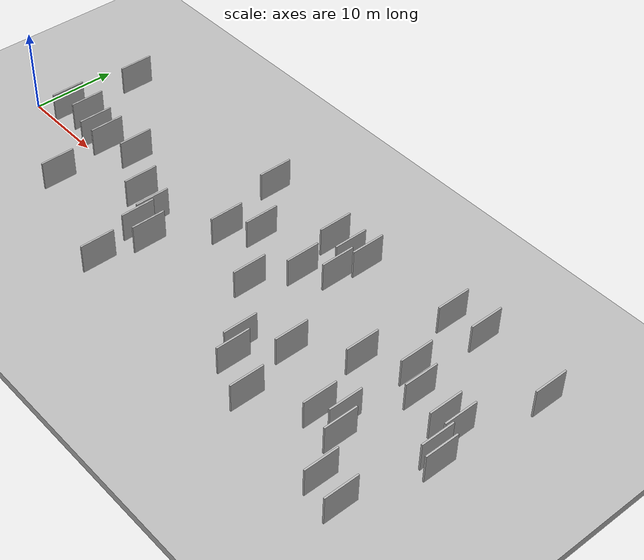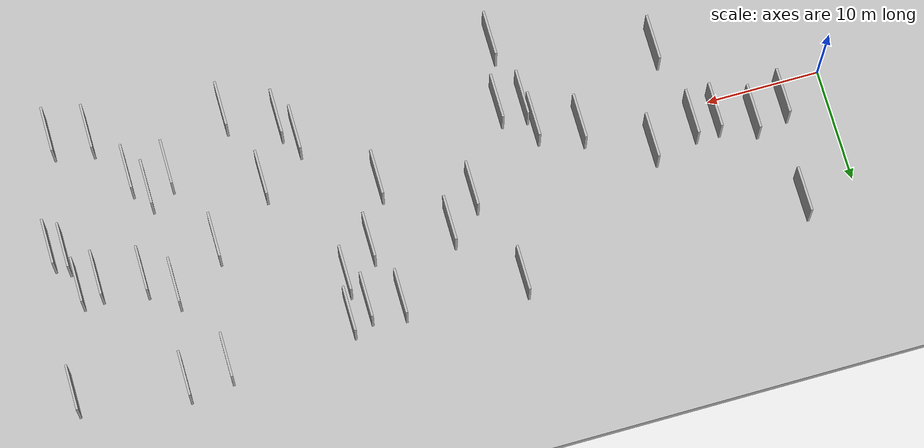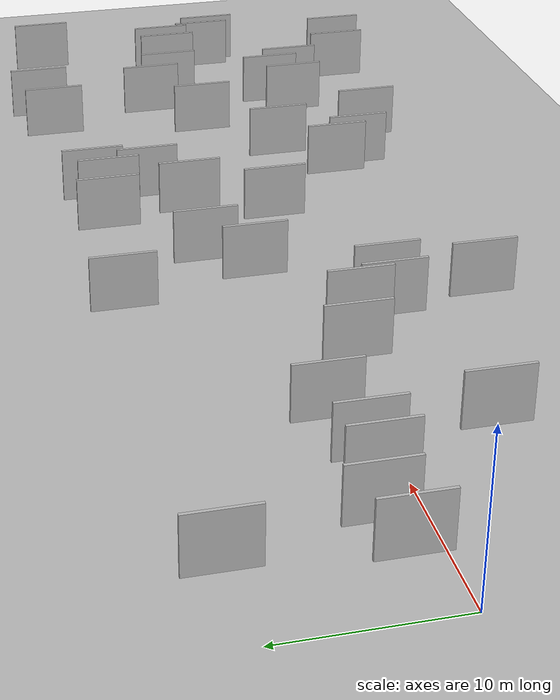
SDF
<?xml version="1.0" encoding="utf-8"?>

<sdf version="1.6">

   <world name="default">

      <gui fullscreen="0">

         <camera name="user_camera">

            <pose>-15 0 4.57585 0 0 0</pose>

            <view_controller>orbit</view_controller>

         </camera>

      </gui>

      <scene>

         <sky>

           <clouds>

             <speed>12</speed>

           </clouds>

         </sky>

         <ambient>0.4 0.4 0.4 1</ambient>

         <background>0.7 0.7 0.7 1</background>

         <shadows>1</shadows>

      </scene>

      <gravity>0 0 -9.8066</gravity>

      <magnetic_field>6e-06 2.3e-05 -4.2e-05</magnetic_field>

      <physics default="0" name="default_physics" type="ode">

         <ode>

            <solver>

               <type>quick</type>

               <iters>10</iters>

               <sor>1.0</sor>

               <use_dynamic_moi_rescaling>0</use_dynamic_moi_rescaling>

            </solver>

            <constraints>

               <cfm>0</cfm>

               <erp>0.2</erp>

               <contact_max_correcting_vel>100</contact_max_correcting_vel>

               <contact_surface_layer>0.001</contact_surface_layer>

            </constraints>

         </ode>

         <max_step_size>0.004</max_step_size>

         <real_time_factor>1</real_time_factor>

         <real_time_update_rate>250</real_time_update_rate>

      </physics>

      <light name="sun" type="directional">

         <cast_shadows>1</cast_shadows>

         <pose>0 0 10 0 0 0</pose>

         <diffuse>0.8 0.8 0.8 1</diffuse>

         <specular>0.2 0.2 0.2 1</specular>

         <attenuation>

            <range>1000</range>

            <constant>0.9</constant>

            <linear>0.01</linear>

            <quadratic>0.001</quadratic>

         </attenuation>

         <direction>-0.5 0.1 -0.9</direction>

      </light>

      <include>

         <name>ground_plane_1</name>

         <uri>model://HANNAS_ground_plane</uri>

         <pose>0 0 0  0 0 0</pose>

      </include>

      <include>

         <name>ground_plane_2</name>

         <uri>model://HANNAS_ground_plane</uri>

         <pose>100 0 0  0 0 0</pose>

      </include>

      <model name="HANNAS_wall_1">

         <static>1</static>

         <pose frame="">40.3661 10.0289 0.0 0.000000 0.000000 1.570796</pose>

         <link name="link">

            <pose frame="">0 0 2.00 0 0 0</pose>

            <collision name="collision">

               <geometry>

                  <box>

                     <size>4.00 0.2 4.00</size>

                  </box>

               </geometry>

               <max_contacts>10</max_contacts>

               <surface>

                  <contact>

                     <ode/>

                  </contact>

                  <bounce/>

                  <friction>

                     <torsional>

                        <ode/>

                     </torsional>

                     <ode/>

                  </friction>

               </surface>

            </collision>

            <visual name="visual">

               <cast_shadows>0</cast_shadows>

               <geometry>

                  <box>

                     <size>4.00 0.2 4.00</size>

                  </box>

               </geometry>

               <material>

                  <script>

                     <uri>model://HANNAS_wall/materials/scripts</uri>

                     <uri>model://HANNAS_wall/materials/textures</uri>

                     <name>vrc/HANNAS_wall</name>

                  </script>

               </material>

            </visual>

            <self_collide>0</self_collide>

            <enable_wind>0</enable_wind>

            <kinematic>0</kinematic>

         </link>

      </model>

      <model name="HANNAS_wall_2">

         <static>1</static>

         <pose frame="">25.6005 -4.1353 0.0 0.000000 0.000000 1.570796</pose>

         <link name="link">

            <pose frame="">0 0 2.00 0 0 0</pose>

            <collision name="collision">

               <geometry>

                  <box>

                     <size>4.00 0.2 4.00</size>

                  </box>

               </geometry>

               <max_contacts>10</max_contacts>

               <surface>

                  <contact>

                     <ode/>

                  </contact>

                  <bounce/>

                  <friction>

                     <torsional>

                        <ode/>

                     </torsional>

                     <ode/>

                  </friction>

               </surface>

            </collision>

            <visual name="visual">

               <cast_shadows>0</cast_shadows>

               <geometry>

                  <box>

                     <size>4.00 0.2 4.00</size>

                  </box>

               </geometry>

               <material>

                  <script>

                     <uri>model://HANNAS_wall/materials/scripts</uri>

                     <uri>model://HANNAS_wall/materials/textures</uri>

                     <name>vrc/HANNAS_wall</name>

                  </script>

               </material>

            </visual>

            <self_collide>0</self_collide>

            <enable_wind>0</enable_wind>

            <kinematic>0</kinematic>

         </link>

      </model>

      <model name="HANNAS_wall_3">

         <static>1</static>

         <pose frame="">41.6318 4.5164 0.0 0.000000 0.000000 1.570796</pose>

         <link name="link">

            <pose frame="">0 0 2.00 0 0 0</pose>

            <collision name="collision">

               <geometry>

                  <box>

                     <size>4.00 0.2 4.00</size>

                  </box>

               </geometry>

               <max_contacts>10</max_contacts>

               <surface>

                  <contact>

                     <ode/>

                  </contact>

                  <bounce/>

                  <friction>

                     <torsional>

                        <ode/>

                     </torsional>

                     <ode/>

                  </friction>

               </surface>

            </collision>

            <visual name="visual">

               <cast_shadows>0</cast_shadows>

               <geometry>

                  <box>

                     <size>4.00 0.2 4.00</size>

                  </box>

               </geometry>

               <material>

                  <script>

                     <uri>model://HANNAS_wall/materials/scripts</uri>

                     <uri>model://HANNAS_wall/materials/textures</uri>

                     <name>vrc/HANNAS_wall</name>

                  </script>

               </material>

            </visual>

            <self_collide>0</self_collide>

            <enable_wind>0</enable_wind>

            <kinematic>0</kinematic>

         </link>

      </model>

      <model name="HANNAS_wall_4">

         <static>1</static>

         <pose frame="">44.9472 10.3143 0.0 0.000000 0.000000 1.570796</pose>

         <link name="link">

            <pose frame="">0 0 2.00 0 0 0</pose>

            <collision name="collision">

               <geometry>

                  <box>

                     <size>4.00 0.2 4.00</size>

                  </box>

               </geometry>

               <max_contacts>10</max_contacts>

               <surface>

                  <contact>

                     <ode/>

                  </contact>

                  <bounce/>

                  <friction>

                     <torsional>

                        <ode/>

                     </torsional>

                     <ode/>

                  </friction>

               </surface>

            </collision>

            <visual name="visual">

               <cast_shadows>0</cast_shadows>

               <geometry>

                  <box>

                     <size>4.00 0.2 4.00</size>

                  </box>

               </geometry>

               <material>

                  <script>

                     <uri>model://HANNAS_wall/materials/scripts</uri>

                     <uri>model://HANNAS_wall/materials/textures</uri>

                     <name>vrc/HANNAS_wall</name>

                  </script>

               </material>

            </visual>

            <self_collide>0</self_collide>

            <enable_wind>0</enable_wind>

            <kinematic>0</kinematic>

         </link>

      </model>

      <model name="HANNAS_wall_5">

         <static>1</static>

         <pose frame="">25.2025 -1.9950 0.0 0.000000 0.000000 1.570796</pose>

         <link name="link">

            <pose frame="">0 0 2.00 0 0 0</pose>

            <collision name="collision">

               <geometry>

                  <box>

                     <size>4.00 0.2 4.00</size>

                  </box>

               </geometry>

               <max_contacts>10</max_contacts>

               <surface>

                  <contact>

                     <ode/>

                  </contact>

                  <bounce/>

                  <friction>

                     <torsional>

                        <ode/>

                     </torsional>

                     <ode/>

                  </friction>

               </surface>

            </collision>

            <visual name="visual">

               <cast_shadows>0</cast_shadows>

               <geometry>

                  <box>

                     <size>4.00 0.2 4.00</size>

                  </box>

               </geometry>

               <material>

                  <script>

                     <uri>model://HANNAS_wall/materials/scripts</uri>

                     <uri>model://HANNAS_wall/materials/textures</uri>

                     <name>vrc/HANNAS_wall</name>

                  </script>

               </material>

            </visual>

            <self_collide>0</self_collide>

            <enable_wind>0</enable_wind>

            <kinematic>0</kinematic>

         </link>

      </model>

      <model name="HANNAS_wall_6">

         <static>1</static>

         <pose frame="">29.8149 10.8938 0.0 0.000000 0.000000 1.570796</pose>

         <link name="link">

            <pose frame="">0 0 2.00 0 0 0</pose>

            <collision name="collision">

               <geometry>

                  <box>

                     <size>4.00 0.2 4.00</size>

                  </box>

               </geometry>

               <max_contacts>10</max_contacts>

               <surface>

                  <contact>

                     <ode/>

                  </contact>

                  <bounce/>

                  <friction>

                     <torsional>

                        <ode/>

                     </torsional>

                     <ode/>

                  </friction>

               </surface>

            </collision>

            <visual name="visual">

               <cast_shadows>0</cast_shadows>

               <geometry>

                  <box>

                     <size>4.00 0.2 4.00</size>

                  </box>

               </geometry>

               <material>

                  <script>

                     <uri>model://HANNAS_wall/materials/scripts</uri>

                     <uri>model://HANNAS_wall/materials/textures</uri>

                     <name>vrc/HANNAS_wall</name>

                  </script>

               </material>

            </visual>

            <self_collide>0</self_collide>

            <enable_wind>0</enable_wind>

            <kinematic>0</kinematic>

         </link>

      </model>

      <model name="HANNAS_wall_7">

         <static>1</static>

         <pose frame="">15.9463 2.5968 0.0 0.000000 0.000000 1.570796</pose>

         <link name="link">

            <pose frame="">0 0 2.00 0 0 0</pose>

            <collision name="collision">

               <geometry>

                  <box>

                     <size>4.00 0.2 4.00</size>

                  </box>

               </geometry>

               <max_contacts>10</max_contacts>

               <surface>

                  <contact>

                     <ode/>

                  </contact>

                  <bounce/>

                  <friction>

                     <torsional>

                        <ode/>

                     </torsional>

                     <ode/>

                  </friction>

               </surface>

            </collision>

            <visual name="visual">

               <cast_shadows>0</cast_shadows>

               <geometry>

                  <box>

                     <size>4.00 0.2 4.00</size>

                  </box>

               </geometry>

               <material>

                  <script>

                     <uri>model://HANNAS_wall/materials/scripts</uri>

                     <uri>model://HANNAS_wall/materials/textures</uri>

                     <name>vrc/HANNAS_wall</name>

                  </script>

               </material>

            </visual>

            <self_collide>0</self_collide>

            <enable_wind>0</enable_wind>

            <kinematic>0</kinematic>

         </link>

      </model>

      <model name="HANNAS_wall_8">

         <static>1</static>

         <pose frame="">13.3557 -5.8385 0.0 0.000000 0.000000 1.570796</pose>

         <link name="link">

            <pose frame="">0 0 2.00 0 0 0</pose>

            <collision name="collision">

               <geometry>

                  <box>

                     <size>4.00 0.2 4.00</size>

                  </box>

               </geometry>

               <max_contacts>10</max_contacts>

               <surface>

                  <contact>

                     <ode/>

                  </contact>

                  <bounce/>

                  <friction>

                     <torsional>

                        <ode/>

                     </torsional>

                     <ode/>

                  </friction>

               </surface>

            </collision>

            <visual name="visual">

               <cast_shadows>0</cast_shadows>

               <geometry>

                  <box>

                     <size>4.00 0.2 4.00</size>

                  </box>

               </geometry>

               <material>

                  <script>

                     <uri>model://HANNAS_wall/materials/scripts</uri>

                     <uri>model://HANNAS_wall/materials/textures</uri>

                     <name>vrc/HANNAS_wall</name>

                  </script>

               </material>

            </visual>

            <self_collide>0</self_collide>

            <enable_wind>0</enable_wind>

            <kinematic>0</kinematic>

         </link>

      </model>

      <model name="HANNAS_wall_9">

         <static>1</static>

         <pose frame="">56.5727 -6.3899 0.0 0.000000 0.000000 1.570796</pose>

         <link name="link">

            <pose frame="">0 0 2.00 0 0 0</pose>

            <collision name="collision">

               <geometry>

                  <box>

                     <size>4.00 0.2 4.00</size>

                  </box>

               </geometry>

               <max_contacts>10</max_contacts>

               <surface>

                  <contact>

                     <ode/>

                  </contact>

                  <bounce/>

                  <friction>

                     <torsional>

                        <ode/>

                     </torsional>

                     <ode/>

                  </friction>

               </surface>

            </collision>

            <visual name="visual">

               <cast_shadows>0</cast_shadows>

               <geometry>

                  <box>

                     <size>4.00 0.2 4.00</size>

                  </box>

               </geometry>

               <material>

                  <script>

                     <uri>model://HANNAS_wall/materials/scripts</uri>

                     <uri>model://HANNAS_wall/materials/textures</uri>

                     <name>vrc/HANNAS_wall</name>

                  </script>

               </material>

            </visual>

            <self_collide>0</self_collide>

            <enable_wind>0</enable_wind>

            <kinematic>0</kinematic>

         </link>

      </model>

      <model name="HANNAS_wall_10">

         <static>1</static>

         <pose frame="">27.7865 -4.3816 0.0 0.000000 0.000000 1.570796</pose>

         <link name="link">

            <pose frame="">0 0 2.00 0 0 0</pose>

            <collision name="collision">

               <geometry>

                  <box>

                     <size>4.00 0.2 4.00</size>

                  </box>

               </geometry>

               <max_contacts>10</max_contacts>

               <surface>

                  <contact>

                     <ode/>

                  </contact>

                  <bounce/>

                  <friction>

                     <torsional>

                        <ode/>

                     </torsional>

                     <ode/>

                  </friction>

               </surface>

            </collision>

            <visual name="visual">

               <cast_shadows>0</cast_shadows>

               <geometry>

                  <box>

                     <size>4.00 0.2 4.00</size>

                  </box>

               </geometry>

               <material>

                  <script>

                     <uri>model://HANNAS_wall/materials/scripts</uri>

                     <uri>model://HANNAS_wall/materials/textures</uri>

                     <name>vrc/HANNAS_wall</name>

                  </script>

               </material>

            </visual>

            <self_collide>0</self_collide>

            <enable_wind>0</enable_wind>

            <kinematic>0</kinematic>

         </link>

      </model>

      <model name="HANNAS_wall_11">

         <static>1</static>

         <pose frame="">62.3425 -11.3296 0.0 0.000000 0.000000 1.570796</pose>

         <link name="link">

            <pose frame="">0 0 2.00 0 0 0</pose>

            <collision name="collision">

               <geometry>

                  <box>

                     <size>4.00 0.2 4.00</size>

                  </box>

               </geometry>

               <max_contacts>10</max_contacts>

               <surface>

                  <contact>

                     <ode/>

                  </contact>

                  <bounce/>

                  <friction>

                     <torsional>

                        <ode/>

                     </torsional>

                     <ode/>

                  </friction>

               </surface>

            </collision>

            <visual name="visual">

               <cast_shadows>0</cast_shadows>

               <geometry>

                  <box>

                     <size>4.00 0.2 4.00</size>

                  </box>

               </geometry>

               <material>

                  <script>

                     <uri>model://HANNAS_wall/materials/scripts</uri>

                     <uri>model://HANNAS_wall/materials/textures</uri>

                     <name>vrc/HANNAS_wall</name>

                  </script>

               </material>

            </visual>

            <self_collide>0</self_collide>

            <enable_wind>0</enable_wind>

            <kinematic>0</kinematic>

         </link>

      </model>

      <model name="HANNAS_wall_12">

         <static>1</static>

         <pose frame="">45.2224 -6.4239 0.0 0.000000 0.000000 1.570796</pose>

         <link name="link">

            <pose frame="">0 0 2.00 0 0 0</pose>

            <collision name="collision">

               <geometry>

                  <box>

                     <size>4.00 0.2 4.00</size>

                  </box>

               </geometry>

               <max_contacts>10</max_contacts>

               <surface>

                  <contact>

                     <ode/>

                  </contact>

                  <bounce/>

                  <friction>

                     <torsional>

                        <ode/>

                     </torsional>

                     <ode/>

                  </friction>

               </surface>

            </collision>

            <visual name="visual">

               <cast_shadows>0</cast_shadows>

               <geometry>

                  <box>

                     <size>4.00 0.2 4.00</size>

                  </box>

               </geometry>

               <material>

                  <script>

                     <uri>model://HANNAS_wall/materials/scripts</uri>

                     <uri>model://HANNAS_wall/materials/textures</uri>

                     <name>vrc/HANNAS_wall</name>

                  </script>

               </material>

            </visual>

            <self_collide>0</self_collide>

            <enable_wind>0</enable_wind>

            <kinematic>0</kinematic>

         </link>

      </model>

      <model name="HANNAS_wall_13">

         <static>1</static>

         <pose frame="">50.7687 -10.1787 0.0 0.000000 0.000000 1.570796</pose>

         <link name="link">

            <pose frame="">0 0 2.00 0 0 0</pose>

            <collision name="collision">

               <geometry>

                  <box>

                     <size>4.00 0.2 4.00</size>

                  </box>

               </geometry>

               <max_contacts>10</max_contacts>

               <surface>

                  <contact>

                     <ode/>

                  </contact>

                  <bounce/>

                  <friction>

                     <torsional>

                        <ode/>

                     </torsional>

                     <ode/>

                  </friction>

               </surface>

            </collision>

            <visual name="visual">

               <cast_shadows>0</cast_shadows>

               <geometry>

                  <box>

                     <size>4.00 0.2 4.00</size>

                  </box>

               </geometry>

               <material>

                  <script>

                     <uri>model://HANNAS_wall/materials/scripts</uri>

                     <uri>model://HANNAS_wall/materials/textures</uri>

                     <name>vrc/HANNAS_wall</name>

                  </script>

               </material>

            </visual>

            <self_collide>0</self_collide>

            <enable_wind>0</enable_wind>

            <kinematic>0</kinematic>

         </link>

      </model>

      <model name="HANNAS_wall_14">

         <static>1</static>

         <pose frame="">68.0120 -2.3012 0.0 0.000000 0.000000 1.570796</pose>

         <link name="link">

            <pose frame="">0 0 2.00 0 0 0</pose>

            <collision name="collision">

               <geometry>

                  <box>

                     <size>4.00 0.2 4.00</size>

                  </box>

               </geometry>

               <max_contacts>10</max_contacts>

               <surface>

                  <contact>

                     <ode/>

                  </contact>

                  <bounce/>

                  <friction>

                     <torsional>

                        <ode/>

                     </torsional>

                     <ode/>

                  </friction>

               </surface>

            </collision>

            <visual name="visual">

               <cast_shadows>0</cast_shadows>

               <geometry>

                  <box>

                     <size>4.00 0.2 4.00</size>

                  </box>

               </geometry>

               <material>

                  <script>

                     <uri>model://HANNAS_wall/materials/scripts</uri>

                     <uri>model://HANNAS_wall/materials/textures</uri>

                     <name>vrc/HANNAS_wall</name>

                  </script>

               </material>

            </visual>

            <self_collide>0</self_collide>

            <enable_wind>0</enable_wind>

            <kinematic>0</kinematic>

         </link>

      </model>

      <model name="HANNAS_wall_15">

         <static>1</static>

         <pose frame="">58.6559 -5.1397 0.0 0.000000 0.000000 1.570796</pose>

         <link name="link">

            <pose frame="">0 0 2.00 0 0 0</pose>

            <collision name="collision">

               <geometry>

                  <box>

                     <size>4.00 0.2 4.00</size>

                  </box>

               </geometry>

               <max_contacts>10</max_contacts>

               <surface>

                  <contact>

                     <ode/>

                  </contact>

                  <bounce/>

                  <friction>

                     <torsional>

                        <ode/>

                     </torsional>

                     <ode/>

                  </friction>

               </surface>

            </collision>

            <visual name="visual">

               <cast_shadows>0</cast_shadows>

               <geometry>

                  <box>

                     <size>4.00 0.2 4.00</size>

                  </box>

               </geometry>

               <material>

                  <script>

                     <uri>model://HANNAS_wall/materials/scripts</uri>

                     <uri>model://HANNAS_wall/materials/textures</uri>

                     <name>vrc/HANNAS_wall</name>

                  </script>

               </material>

            </visual>

            <self_collide>0</self_collide>

            <enable_wind>0</enable_wind>

            <kinematic>0</kinematic>

         </link>

      </model>

      <model name="HANNAS_wall_16">

         <static>1</static>

         <pose frame="">4.0050 1.8254 0.0 0.000000 0.000000 1.570796</pose>

         <link name="link">

            <pose frame="">0 0 2.00 0 0 0</pose>

            <collision name="collision">

               <geometry>

                  <box>

                     <size>4.00 0.2 4.00</size>

                  </box>

               </geometry>

               <max_contacts>10</max_contacts>

               <surface>

                  <contact>

                     <ode/>

                  </contact>

                  <bounce/>

                  <friction>

                     <torsional>

                        <ode/>

                     </torsional>

                     <ode/>

                  </friction>

               </surface>

            </collision>

            <visual name="visual">

               <cast_shadows>0</cast_shadows>

               <geometry>

                  <box>

                     <size>4.00 0.2 4.00</size>

                  </box>

               </geometry>

               <material>

                  <script>

                     <uri>model://HANNAS_wall/materials/scripts</uri>

                     <uri>model://HANNAS_wall/materials/textures</uri>

                     <name>vrc/HANNAS_wall</name>

                  </script>

               </material>

            </visual>

            <self_collide>0</self_collide>

            <enable_wind>0</enable_wind>

            <kinematic>0</kinematic>

         </link>

      </model>

      <model name="HANNAS_wall_17">

         <static>1</static>

         <pose frame="">6.8567 2.5074 0.0 0.000000 0.000000 1.570796</pose>

         <link name="link">

            <pose frame="">0 0 2.00 0 0 0</pose>

            <collision name="collision">

               <geometry>

                  <box>

                     <size>4.00 0.2 4.00</size>

                  </box>

               </geometry>

               <max_contacts>10</max_contacts>

               <surface>

                  <contact>

                     <ode/>

                  </contact>

                  <bounce/>

                  <friction>

                     <torsional>

                        <ode/>

                     </torsional>

                     <ode/>

                  </friction>

               </surface>

            </collision>

            <visual name="visual">

               <cast_shadows>0</cast_shadows>

               <geometry>

                  <box>

                     <size>4.00 0.2 4.00</size>

                  </box>

               </geometry>

               <material>

                  <script>

                     <uri>model://HANNAS_wall/materials/scripts</uri>

                     <uri>model://HANNAS_wall/materials/textures</uri>

                     <name>vrc/HANNAS_wall</name>

                  </script>

               </material>

            </visual>

            <self_collide>0</self_collide>

            <enable_wind>0</enable_wind>

            <kinematic>0</kinematic>

         </link>

      </model>

      <model name="HANNAS_wall_18">

         <static>1</static>

         <pose frame="">44.3510 6.7857 0.0 0.000000 0.000000 1.570796</pose>

         <link name="link">

            <pose frame="">0 0 2.00 0 0 0</pose>

            <collision name="collision">

               <geometry>

                  <box>

                     <size>4.00 0.2 4.00</size>

                  </box>

               </geometry>

               <max_contacts>10</max_contacts>

               <surface>

                  <contact>

                     <ode/>

                  </contact>

                  <bounce/>

                  <friction>

                     <torsional>

                        <ode/>

                     </torsional>

                     <ode/>

                  </friction>

               </surface>

            </collision>

            <visual name="visual">

               <cast_shadows>0</cast_shadows>

               <geometry>

                  <box>

                     <size>4.00 0.2 4.00</size>

                  </box>

               </geometry>

               <material>

                  <script>

                     <uri>model://HANNAS_wall/materials/scripts</uri>

                     <uri>model://HANNAS_wall/materials/textures</uri>

                     <name>vrc/HANNAS_wall</name>

                  </script>

               </material>

            </visual>

            <self_collide>0</self_collide>

            <enable_wind>0</enable_wind>

            <kinematic>0</kinematic>

         </link>

      </model>

      <model name="HANNAS_wall_19">

         <static>1</static>

         <pose frame="">39.5166 -0.6238 0.0 0.000000 0.000000 1.570796</pose>

         <link name="link">

            <pose frame="">0 0 2.00 0 0 0</pose>

            <collision name="collision">

               <geometry>

                  <box>

                     <size>4.00 0.2 4.00</size>

                  </box>

               </geometry>

               <max_contacts>10</max_contacts>

               <surface>

                  <contact>

                     <ode/>

                  </contact>

                  <bounce/>

                  <friction>

                     <torsional>

                        <ode/>

                     </torsional>

                     <ode/>

                  </friction>

               </surface>

            </collision>

            <visual name="visual">

               <cast_shadows>0</cast_shadows>

               <geometry>

                  <box>

                     <size>4.00 0.2 4.00</size>

                  </box>

               </geometry>

               <material>

                  <script>

                     <uri>model://HANNAS_wall/materials/scripts</uri>

                     <uri>model://HANNAS_wall/materials/textures</uri>

                     <name>vrc/HANNAS_wall</name>

                  </script>

               </material>

            </visual>

            <self_collide>0</self_collide>

            <enable_wind>0</enable_wind>

            <kinematic>0</kinematic>

         </link>

      </model>

      <model name="HANNAS_wall_20">

         <static>1</static>

         <pose frame="">59.9736 -6.9280 0.0 0.000000 0.000000 1.570796</pose>

         <link name="link">

            <pose frame="">0 0 2.00 0 0 0</pose>

            <collision name="collision">

               <geometry>

                  <box>

                     <size>4.00 0.2 4.00</size>

                  </box>

               </geometry>

               <max_contacts>10</max_contacts>

               <surface>

                  <contact>

                     <ode/>

                  </contact>

                  <bounce/>

                  <friction>

                     <torsional>

                        <ode/>

                     </torsional>

                     <ode/>

                  </friction>

               </surface>

            </collision>

            <visual name="visual">

               <cast_shadows>0</cast_shadows>

               <geometry>

                  <box>

                     <size>4.00 0.2 4.00</size>

                  </box>

               </geometry>

               <material>

                  <script>

                     <uri>model://HANNAS_wall/materials/scripts</uri>

                     <uri>model://HANNAS_wall/materials/textures</uri>

                     <name>vrc/HANNAS_wall</name>

                  </script>

               </material>

            </visual>

            <self_collide>0</self_collide>

            <enable_wind>0</enable_wind>

            <kinematic>0</kinematic>

         </link>

      </model>

      <model name="HANNAS_wall_21">

         <static>1</static>

         <pose frame="">12.0577 1.5068 0.0 0.000000 0.000000 1.570796</pose>

         <link name="link">

            <pose frame="">0 0 2.00 0 0 0</pose>

            <collision name="collision">

               <geometry>

                  <box>

                     <size>4.00 0.2 4.00</size>

                  </box>

               </geometry>

               <max_contacts>10</max_contacts>

               <surface>

                  <contact>

                     <ode/>

                  </contact>

                  <bounce/>

                  <friction>

                     <torsional>

                        <ode/>

                     </torsional>

                     <ode/>

                  </friction>

               </surface>

            </collision>

            <visual name="visual">

               <cast_shadows>0</cast_shadows>

               <geometry>

                  <box>

                     <size>4.00 0.2 4.00</size>

                  </box>

               </geometry>

               <material>

                  <script>

                     <uri>model://HANNAS_wall/materials/scripts</uri>

                     <uri>model://HANNAS_wall/materials/textures</uri>

                     <name>vrc/HANNAS_wall</name>

                  </script>

               </material>

            </visual>

            <self_collide>0</self_collide>

            <enable_wind>0</enable_wind>

            <kinematic>0</kinematic>

         </link>

      </model>

      <model name="HANNAS_wall_22">

         <static>1</static>

         <pose frame="">49.0254 -3.2967 0.0 0.000000 0.000000 1.570796</pose>

         <link name="link">

            <pose frame="">0 0 2.00 0 0 0</pose>

            <collision name="collision">

               <geometry>

                  <box>

                     <size>4.00 0.2 4.00</size>

                  </box>

               </geometry>

               <max_contacts>10</max_contacts>

               <surface>

                  <contact>

                     <ode/>

                  </contact>

                  <bounce/>

                  <friction>

                     <torsional>

                        <ode/>

                     </torsional>

                     <ode/>

                  </friction>

               </surface>

            </collision>

            <visual name="visual">

               <cast_shadows>0</cast_shadows>

               <geometry>

                  <box>

                     <size>4.00 0.2 4.00</size>

                  </box>

               </geometry>

               <material>

                  <script>

                     <uri>model://HANNAS_wall/materials/scripts</uri>

                     <uri>model://HANNAS_wall/materials/textures</uri>

                     <name>vrc/HANNAS_wall</name>

                  </script>

               </material>

            </visual>

            <self_collide>0</self_collide>

            <enable_wind>0</enable_wind>

            <kinematic>0</kinematic>

         </link>

      </model>

      <model name="HANNAS_wall_23">

         <static>1</static>

         <pose frame="">58.5530 3.8619 0.0 0.000000 0.000000 1.570796</pose>

         <link name="link">

            <pose frame="">0 0 2.00 0 0 0</pose>

            <collision name="collision">

               <geometry>

                  <box>

                     <size>4.00 0.2 4.00</size>

                  </box>

               </geometry>

               <max_contacts>10</max_contacts>

               <surface>

                  <contact>

                     <ode/>

                  </contact>

                  <bounce/>

                  <friction>

                     <torsional>

                        <ode/>

                     </torsional>

                     <ode/>

                  </friction>

               </surface>

            </collision>

            <visual name="visual">

               <cast_shadows>0</cast_shadows>

               <geometry>

                  <box>

                     <size>4.00 0.2 4.00</size>

                  </box>

               </geometry>

               <material>

                  <script>

                     <uri>model://HANNAS_wall/materials/scripts</uri>

                     <uri>model://HANNAS_wall/materials/textures</uri>

                     <name>vrc/HANNAS_wall</name>

                  </script>

               </material>

            </visual>

            <self_collide>0</self_collide>

            <enable_wind>0</enable_wind>

            <kinematic>0</kinematic>

         </link>

      </model>

      <model name="HANNAS_wall_24">

         <static>1</static>

         <pose frame="">26.8066 -10.0412 0.0 0.000000 0.000000 1.570796</pose>

         <link name="link">

            <pose frame="">0 0 2.00 0 0 0</pose>

            <collision name="collision">

               <geometry>

                  <box>

                     <size>4.00 0.2 4.00</size>

                  </box>

               </geometry>

               <max_contacts>10</max_contacts>

               <surface>

                  <contact>

                     <ode/>

                  </contact>

                  <bounce/>

                  <friction>

                     <torsional>

                        <ode/>

                     </torsional>

                     <ode/>

                  </friction>

               </surface>

            </collision>

            <visual name="visual">

               <cast_shadows>0</cast_shadows>

               <geometry>

                  <box>

                     <size>4.00 0.2 4.00</size>

                  </box>

               </geometry>

               <material>

                  <script>

                     <uri>model://HANNAS_wall/materials/scripts</uri>

                     <uri>model://HANNAS_wall/materials/textures</uri>

                     <name>vrc/HANNAS_wall</name>

                  </script>

               </material>

            </visual>

            <self_collide>0</self_collide>

            <enable_wind>0</enable_wind>

            <kinematic>0</kinematic>

         </link>

      </model>

      <model name="HANNAS_wall_25">

         <static>1</static>

         <pose frame="">43.2446 9.5328 0.0 0.000000 0.000000 1.570796</pose>

         <link name="link">

            <pose frame="">0 0 2.00 0 0 0</pose>

            <collision name="collision">

               <geometry>

                  <box>

                     <size>4.00 0.2 4.00</size>

                  </box>

               </geometry>

               <max_contacts>10</max_contacts>

               <surface>

                  <contact>

                     <ode/>

                  </contact>

                  <bounce/>

                  <friction>

                     <torsional>

                        <ode/>

                     </torsional>

                     <ode/>

                  </friction>

               </surface>

            </collision>

            <visual name="visual">

               <cast_shadows>0</cast_shadows>

               <geometry>

                  <box>

                     <size>4.00 0.2 4.00</size>

                  </box>

               </geometry>

               <material>

                  <script>

                     <uri>model://HANNAS_wall/materials/scripts</uri>

                     <uri>model://HANNAS_wall/materials/textures</uri>

                     <name>vrc/HANNAS_wall</name>

                  </script>

               </material>

            </visual>

            <self_collide>0</self_collide>

            <enable_wind>0</enable_wind>

            <kinematic>0</kinematic>

         </link>

      </model>

      <model name="HANNAS_wall_26">

         <static>1</static>

         <pose frame="">66.8483 -1.6574 0.0 0.000000 0.000000 1.570796</pose>

         <link name="link">

            <pose frame="">0 0 2.00 0 0 0</pose>

            <collision name="collision">

               <geometry>

                  <box>

                     <size>4.00 0.2 4.00</size>

                  </box>

               </geometry>

               <max_contacts>10</max_contacts>

               <surface>

                  <contact>

                     <ode/>

                  </contact>

                  <bounce/>

                  <friction>

                     <torsional>

                        <ode/>

                     </torsional>

                     <ode/>

                  </friction>

               </surface>

            </collision>

            <visual name="visual">

               <cast_shadows>0</cast_shadows>

               <geometry>

                  <box>

                     <size>4.00 0.2 4.00</size>

                  </box>

               </geometry>

               <material>

                  <script>

                     <uri>model://HANNAS_wall/materials/scripts</uri>

                     <uri>model://HANNAS_wall/materials/textures</uri>

                     <name>vrc/HANNAS_wall</name>

                  </script>

               </material>

            </visual>

            <self_collide>0</self_collide>

            <enable_wind>0</enable_wind>

            <kinematic>0</kinematic>

         </link>

      </model>

      <model name="HANNAS_wall_27">

         <static>1</static>

         <pose frame="">64.7552 1.4455 0.0 0.000000 0.000000 1.570796</pose>

         <link name="link">

            <pose frame="">0 0 2.00 0 0 0</pose>

            <collision name="collision">

               <geometry>

                  <box>

                     <size>4.00 0.2 4.00</size>

                  </box>

               </geometry>

               <max_contacts>10</max_contacts>

               <surface>

                  <contact>

                     <ode/>

                  </contact>

                  <bounce/>

                  <friction>

                     <torsional>

                        <ode/>

                     </torsional>

                     <ode/>

                  </friction>

               </surface>

            </collision>

            <visual name="visual">

               <cast_shadows>0</cast_shadows>

               <geometry>

                  <box>

                     <size>4.00 0.2 4.00</size>

                  </box>

               </geometry>

               <material>

                  <script>

                     <uri>model://HANNAS_wall/materials/scripts</uri>

                     <uri>model://HANNAS_wall/materials/textures</uri>

                     <name>vrc/HANNAS_wall</name>

                  </script>

               </material>

            </visual>

            <self_collide>0</self_collide>

            <enable_wind>0</enable_wind>

            <kinematic>0</kinematic>

         </link>

      </model>

      <model name="HANNAS_wall_28">

         <static>1</static>

         <pose frame="">65.6737 -11.9878 0.0 0.000000 0.000000 1.570796</pose>

         <link name="link">

            <pose frame="">0 0 2.00 0 0 0</pose>

            <collision name="collision">

               <geometry>

                  <box>

                     <size>4.00 0.2 4.00</size>

                  </box>

               </geometry>

               <max_contacts>10</max_contacts>

               <surface>

                  <contact>

                     <ode/>

                  </contact>

                  <bounce/>

                  <friction>

                     <torsional>

                        <ode/>

                     </torsional>

                     <ode/>

                  </friction>

               </surface>

            </collision>

            <visual name="visual">

               <cast_shadows>0</cast_shadows>

               <geometry>

                  <box>

                     <size>4.00 0.2 4.00</size>

                  </box>

               </geometry>

               <material>

                  <script>

                     <uri>model://HANNAS_wall/materials/scripts</uri>

                     <uri>model://HANNAS_wall/materials/textures</uri>

                     <name>vrc/HANNAS_wall</name>

                  </script>

               </material>

            </visual>

            <self_collide>0</self_collide>

            <enable_wind>0</enable_wind>

            <kinematic>0</kinematic>

         </link>

      </model>

      <model name="HANNAS_wall_29">

         <static>1</static>

         <pose frame="">31.9695 2.5251 0.0 0.000000 0.000000 1.570796</pose>

         <link name="link">

            <pose frame="">0 0 2.00 0 0 0</pose>

            <collision name="collision">

               <geometry>

                  <box>

                     <size>4.00 0.2 4.00</size>

                  </box>

               </geometry>

               <max_contacts>10</max_contacts>

               <surface>

                  <contact>

                     <ode/>

                  </contact>

                  <bounce/>

                  <friction>

                     <torsional>

                        <ode/>

                     </torsional>

                     <ode/>

                  </friction>

               </surface>

            </collision>

            <visual name="visual">

               <cast_shadows>0</cast_shadows>

               <geometry>

                  <box>

                     <size>4.00 0.2 4.00</size>

                  </box>

               </geometry>

               <material>

                  <script>

                     <uri>model://HANNAS_wall/materials/scripts</uri>

                     <uri>model://HANNAS_wall/materials/textures</uri>

                     <name>vrc/HANNAS_wall</name>

                  </script>

               </material>

            </visual>

            <self_collide>0</self_collide>

            <enable_wind>0</enable_wind>

            <kinematic>0</kinematic>

         </link>

      </model>

      <model name="HANNAS_wall_30">

         <static>1</static>

         <pose frame="">55.9413 11.3600 0.0 0.000000 0.000000 1.570796</pose>

         <link name="link">

            <pose frame="">0 0 2.00 0 0 0</pose>

            <collision name="collision">

               <geometry>

                  <box>

                     <size>4.00 0.2 4.00</size>

                  </box>

               </geometry>

               <max_contacts>10</max_contacts>

               <surface>

                  <contact>

                     <ode/>

                  </contact>

                  <bounce/>

                  <friction>

                     <torsional>

                        <ode/>

                     </torsional>

                     <ode/>

                  </friction>

               </surface>

            </collision>

            <visual name="visual">

               <cast_shadows>0</cast_shadows>

               <geometry>

                  <box>

                     <size>4.00 0.2 4.00</size>

                  </box>

               </geometry>

               <material>

                  <script>

                     <uri>model://HANNAS_wall/materials/scripts</uri>

                     <uri>model://HANNAS_wall/materials/textures</uri>

                     <name>vrc/HANNAS_wall</name>

                  </script>

               </material>

            </visual>

            <self_collide>0</self_collide>

            <enable_wind>0</enable_wind>

            <kinematic>0</kinematic>

         </link>

      </model>

      <model name="HANNAS_wall_31">

         <static>1</static>

         <pose frame="">59.7411 11.9454 0.0 0.000000 0.000000 1.570796</pose>

         <link name="link">

            <pose frame="">0 0 2.00 0 0 0</pose>

            <collision name="collision">

               <geometry>

                  <box>

                     <size>4.00 0.2 4.00</size>

                  </box>

               </geometry>

               <max_contacts>10</max_contacts>

               <surface>

                  <contact>

                     <ode/>

                  </contact>

                  <bounce/>

                  <friction>

                     <torsional>

                        <ode/>

                     </torsional>

                     <ode/>

                  </friction>

               </surface>

            </collision>

            <visual name="visual">

               <cast_shadows>0</cast_shadows>

               <geometry>

                  <box>

                     <size>4.00 0.2 4.00</size>

                  </box>

               </geometry>

               <material>

                  <script>

                     <uri>model://HANNAS_wall/materials/scripts</uri>

                     <uri>model://HANNAS_wall/materials/textures</uri>

                     <name>vrc/HANNAS_wall</name>

                  </script>

               </material>

            </visual>

            <self_collide>0</self_collide>

            <enable_wind>0</enable_wind>

            <kinematic>0</kinematic>

         </link>

      </model>

      <model name="HANNAS_wall_32">

         <static>1</static>

         <pose frame="">46.3692 -8.2448 0.0 0.000000 0.000000 1.570796</pose>

         <link name="link">

            <pose frame="">0 0 2.00 0 0 0</pose>

            <collision name="collision">

               <geometry>

                  <box>

                     <size>4.00 0.2 4.00</size>

                  </box>

               </geometry>

               <max_contacts>10</max_contacts>

               <surface>

                  <contact>

                     <ode/>

                  </contact>

                  <bounce/>

                  <friction>

                     <torsional>

                        <ode/>

                     </torsional>

                     <ode/>

                  </friction>

               </surface>

            </collision>

            <visual name="visual">

               <cast_shadows>0</cast_shadows>

               <geometry>

                  <box>

                     <size>4.00 0.2 4.00</size>

                  </box>

               </geometry>

               <material>

                  <script>

                     <uri>model://HANNAS_wall/materials/scripts</uri>

                     <uri>model://HANNAS_wall/materials/textures</uri>

                     <name>vrc/HANNAS_wall</name>

                  </script>

               </material>

            </visual>

            <self_collide>0</self_collide>

            <enable_wind>0</enable_wind>

            <kinematic>0</kinematic>

         </link>

      </model>

      <model name="HANNAS_wall_33">

         <static>1</static>

         <pose frame="">4.8589 10.7376 0.0 0.000000 0.000000 1.570796</pose>

         <link name="link">

            <pose frame="">0 0 2.00 0 0 0</pose>

            <collision name="collision">

               <geometry>

                  <box>

                     <size>4.00 0.2 4.00</size>

                  </box>

               </geometry>

               <max_contacts>10</max_contacts>

               <surface>

                  <contact>

                     <ode/>

                  </contact>

                  <bounce/>

                  <friction>

                     <torsional>

                        <ode/>

                     </torsional>

                     <ode/>

                  </friction>

               </surface>

            </collision>

            <visual name="visual">

               <cast_shadows>0</cast_shadows>

               <geometry>

                  <box>

                     <size>4.00 0.2 4.00</size>

                  </box>

               </geometry>

               <material>

                  <script>

                     <uri>model://HANNAS_wall/materials/scripts</uri>

                     <uri>model://HANNAS_wall/materials/textures</uri>

                     <name>vrc/HANNAS_wall</name>

                  </script>

               </material>

            </visual>

            <self_collide>0</self_collide>

            <enable_wind>0</enable_wind>

            <kinematic>0</kinematic>

         </link>

      </model>

      <model name="HANNAS_wall_34">

         <static>1</static>

         <pose frame="">9.9807 1.4673 0.0 0.000000 0.000000 1.570796</pose>

         <link name="link">

            <pose frame="">0 0 2.00 0 0 0</pose>

            <collision name="collision">

               <geometry>

                  <box>

                     <size>4.00 0.2 4.00</size>

                  </box>

               </geometry>

               <max_contacts>10</max_contacts>

               <surface>

                  <contact>

                     <ode/>

                  </contact>

                  <bounce/>

                  <friction>

                     <torsional>

                        <ode/>

                     </torsional>

                     <ode/>

                  </friction>

               </surface>

            </collision>

            <visual name="visual">

               <cast_shadows>0</cast_shadows>

               <geometry>

                  <box>

                     <size>4.00 0.2 4.00</size>

                  </box>

               </geometry>

               <material>

                  <script>

                     <uri>model://HANNAS_wall/materials/scripts</uri>

                     <uri>model://HANNAS_wall/materials/textures</uri>

                     <name>vrc/HANNAS_wall</name>

                  </script>

               </material>

            </visual>

            <self_collide>0</self_collide>

            <enable_wind>0</enable_wind>

            <kinematic>0</kinematic>

         </link>

      </model>

      <model name="HANNAS_wall_35">

         <static>1</static>

         <pose frame="">54.2760 0.9525 0.0 0.000000 0.000000 1.570796</pose>

         <link name="link">

            <pose frame="">0 0 2.00 0 0 0</pose>

            <collision name="collision">

               <geometry>

                  <box>

                     <size>4.00 0.2 4.00</size>

                  </box>

               </geometry>

               <max_contacts>10</max_contacts>

               <surface>

                  <contact>

                     <ode/>

                  </contact>

                  <bounce/>

                  <friction>

                     <torsional>

                        <ode/>

                     </torsional>

                     <ode/>

                  </friction>

               </surface>

            </collision>

            <visual name="visual">

               <cast_shadows>0</cast_shadows>

               <geometry>

                  <box>

                     <size>4.00 0.2 4.00</size>

                  </box>

               </geometry>

               <material>

                  <script>

                     <uri>model://HANNAS_wall/materials/scripts</uri>

                     <uri>model://HANNAS_wall/materials/textures</uri>

                     <name>vrc/HANNAS_wall</name>

                  </script>

               </material>

            </visual>

            <self_collide>0</self_collide>

            <enable_wind>0</enable_wind>

            <kinematic>0</kinematic>

         </link>

      </model>

      <model name="HANNAS_wall_36">

         <static>1</static>

         <pose frame="">34.6205 4.9818 0.0 0.000000 0.000000 1.570796</pose>

         <link name="link">

            <pose frame="">0 0 2.00 0 0 0</pose>

            <collision name="collision">

               <geometry>

                  <box>

                     <size>4.00 0.2 4.00</size>

                  </box>

               </geometry>

               <max_contacts>10</max_contacts>

               <surface>

                  <contact>

                     <ode/>

                  </contact>

                  <bounce/>

                  <friction>

                     <torsional>

                        <ode/>

                     </torsional>

                     <ode/>

                  </friction>

               </surface>

            </collision>

            <visual name="visual">

               <cast_shadows>0</cast_shadows>

               <geometry>

                  <box>

                     <size>4.00 0.2 4.00</size>

                  </box>

               </geometry>

               <material>

                  <script>

                     <uri>model://HANNAS_wall/materials/scripts</uri>

                     <uri>model://HANNAS_wall/materials/textures</uri>

                     <name>vrc/HANNAS_wall</name>

                  </script>

               </material>

            </visual>

            <self_collide>0</self_collide>

            <enable_wind>0</enable_wind>

            <kinematic>0</kinematic>

         </link>

      </model>

      <model name="HANNAS_wall_37">

         <static>1</static>

         <pose frame="">21.4433 -0.7238 0.0 0.000000 0.000000 1.570796</pose>

         <link name="link">

            <pose frame="">0 0 2.00 0 0 0</pose>

            <collision name="collision">

               <geometry>

                  <box>

                     <size>4.00 0.2 4.00</size>

                  </box>

               </geometry>

               <max_contacts>10</max_contacts>

               <surface>

                  <contact>

                     <ode/>

                  </contact>

                  <bounce/>

                  <friction>

                     <torsional>

                        <ode/>

                     </torsional>

                     <ode/>

                  </friction>

               </surface>

            </collision>

            <visual name="visual">

               <cast_shadows>0</cast_shadows>

               <geometry>

                  <box>

                     <size>4.00 0.2 4.00</size>

                  </box>

               </geometry>

               <material>

                  <script>

                     <uri>model://HANNAS_wall/materials/scripts</uri>

                     <uri>model://HANNAS_wall/materials/textures</uri>

                     <name>vrc/HANNAS_wall</name>

                  </script>

               </material>

            </visual>

            <self_collide>0</self_collide>

            <enable_wind>0</enable_wind>

            <kinematic>0</kinematic>

         </link>

      </model>

      <model name="HANNAS_wall_38">

         <static>1</static>

         <pose frame="">60.9226 2.1201 0.0 0.000000 0.000000 1.570796</pose>

         <link name="link">

            <pose frame="">0 0 2.00 0 0 0</pose>

            <collision name="collision">

               <geometry>

                  <box>

                     <size>4.00 0.2 4.00</size>

                  </box>

               </geometry>

               <max_contacts>10</max_contacts>

               <surface>

                  <contact>

                     <ode/>

                  </contact>

                  <bounce/>

                  <friction>

                     <torsional>

                        <ode/>

                     </torsional>

                     <ode/>

                  </friction>

               </surface>

            </collision>

            <visual name="visual">

               <cast_shadows>0</cast_shadows>

               <geometry>

                  <box>

                     <size>4.00 0.2 4.00</size>

                  </box>

               </geometry>

               <material>

                  <script>

                     <uri>model://HANNAS_wall/materials/scripts</uri>

                     <uri>model://HANNAS_wall/materials/textures</uri>

                     <name>vrc/HANNAS_wall</name>

                  </script>

               </material>

            </visual>

            <self_collide>0</self_collide>

            <enable_wind>0</enable_wind>

            <kinematic>0</kinematic>

         </link>

      </model>

      <model name="HANNAS_wall_39">

         <static>1</static>

         <pose frame="">69.1098 10.5753 0.0 0.000000 0.000000 1.570796</pose>

         <link name="link">

            <pose frame="">0 0 2.00 0 0 0</pose>

            <collision name="collision">

               <geometry>

                  <box>

                     <size>4.00 0.2 4.00</size>

                  </box>

               </geometry>

               <max_contacts>10</max_contacts>

               <surface>

                  <contact>

                     <ode/>

                  </contact>

                  <bounce/>

                  <friction>

                     <torsional>

                        <ode/>

                     </torsional>

                     <ode/>

                  </friction>

               </surface>

            </collision>

            <visual name="visual">

               <cast_shadows>0</cast_shadows>

               <geometry>

                  <box>

                     <size>4.00 0.2 4.00</size>

                  </box>

               </geometry>

               <material>

                  <script>

                     <uri>model://HANNAS_wall/materials/scripts</uri>

                     <uri>model://HANNAS_wall/materials/textures</uri>

                     <name>vrc/HANNAS_wall</name>

                  </script>

               </material>

            </visual>

            <self_collide>0</self_collide>

            <enable_wind>0</enable_wind>

            <kinematic>0</kinematic>

         </link>

      </model>

      <model name="HANNAS_wall_40">

         <static>1</static>

         <pose frame="">66.4646 1.6084 0.0 0.000000 0.000000 1.570796</pose>

         <link name="link">

            <pose frame="">0 0 2.00 0 0 0</pose>

            <collision name="collision">

               <geometry>

                  <box>

                     <size>4.00 0.2 4.00</size>

                  </box>

               </geometry>

               <max_contacts>10</max_contacts>

               <surface>

                  <contact>

                     <ode/>

                  </contact>

                  <bounce/>

                  <friction>

                     <torsional>

                        <ode/>

                     </torsional>

                     <ode/>

                  </friction>

               </surface>

            </collision>

            <visual name="visual">

               <cast_shadows>0</cast_shadows>

               <geometry>

                  <box>

                     <size>4.00 0.2 4.00</size>

                  </box>

               </geometry>

               <material>

                  <script>

                     <uri>model://HANNAS_wall/materials/scripts</uri>

                     <uri>model://HANNAS_wall/materials/textures</uri>

                     <name>vrc/HANNAS_wall</name>

                  </script>

               </material>

            </visual>

            <self_collide>0</self_collide>

            <enable_wind>0</enable_wind>

            <kinematic>0</kinematic>

         </link>

      </model>

   </world>

</sdf>
